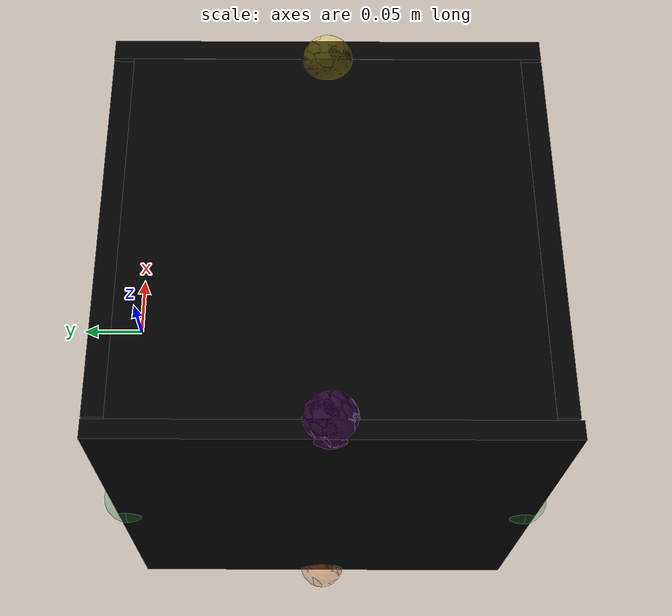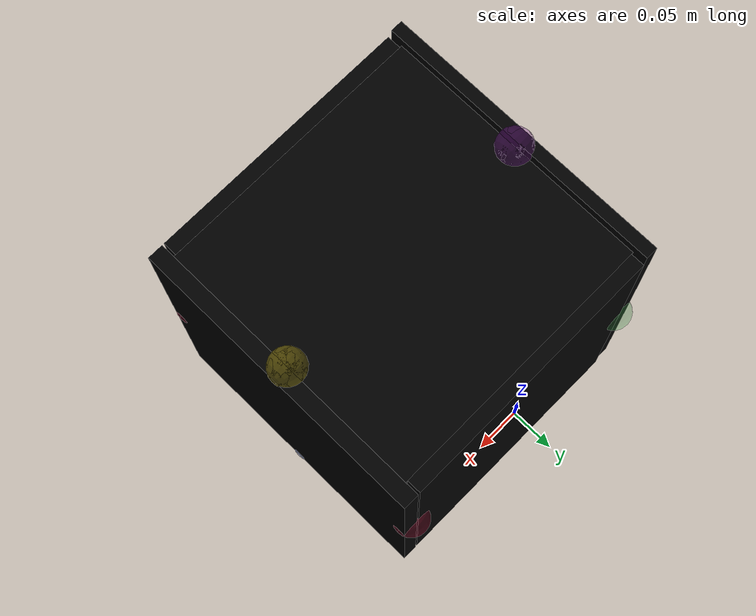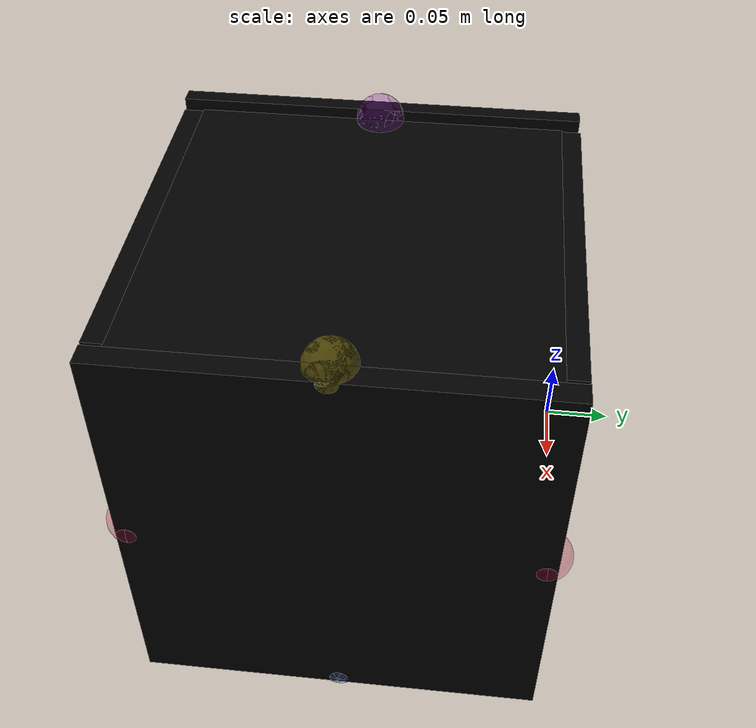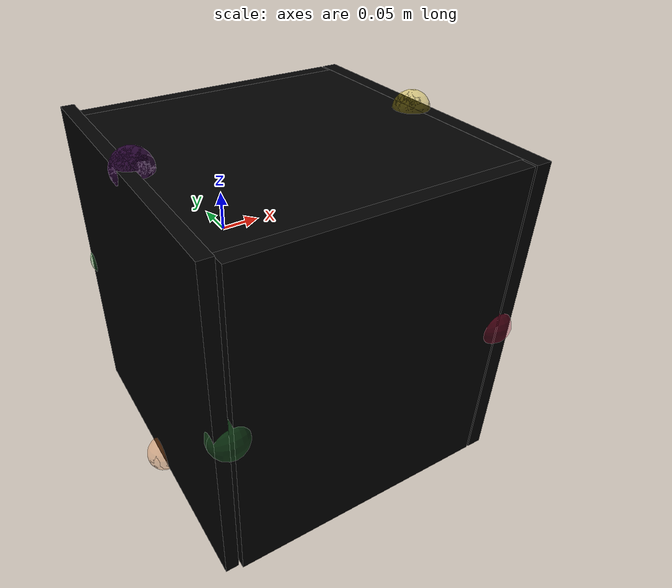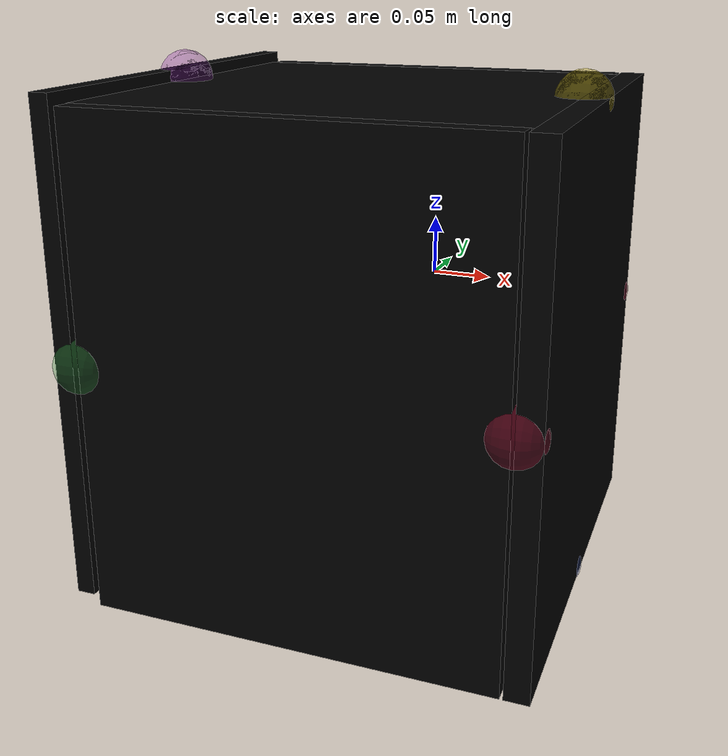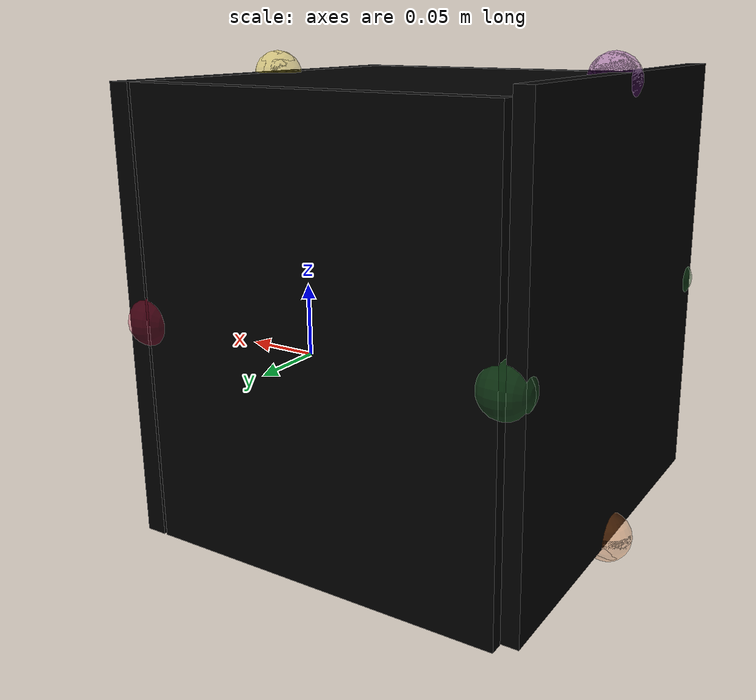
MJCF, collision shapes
<mujoco model="box_lekman_0858">
    <custom>
        <numeric data="-0.501105 0.000227 0.007907 -0.013464 -0.013464 -0.706979 -0.706979" name="0_part0_initpos"/>
        <numeric data="0.295795 -0.15687 0.009744 0.508318 -0.491542 0.508318 0.491541" name="5_part5_initpos"/>
        <numeric data="0.319709 0.240352 0.00541 0.99897 -0.0 -0.0 -0.045379" name="4_part4_initpos"/>
        <numeric data="0.703445 0.009245 0.007907 -0.013439 -0.013438 0.706979 0.706979" name="3_part3_initpos"/>
        <numeric data="-0.102143 -0.141644 0.008011 0.500279 -0.499721 -0.500279 -0.499721" name="2_part2_initpos"/>
        <numeric data="-0.107383 0.260947 0.001557 0.99989 0.0 0.0 0.01486" name="1_part1_initpos"/>
    </custom>
    <asset>
        <mesh file="box_lekman_0858/0.stl" name="part0" scale="0.001 0.001 0.001"/>
        <mesh file="box_lekman_0858/5.stl" name="part5" scale="0.001 0.001 0.001"/>
        <mesh file="box_lekman_0858/4.stl" name="part4" scale="0.001 0.001 0.001"/>
        <mesh file="box_lekman_0858/3.stl" name="part3" scale="0.001 0.001 0.001"/>
        <mesh file="box_lekman_0858/2.stl" name="part2" scale="0.001 0.001 0.001"/>
        <mesh file="box_lekman_0858/1.stl" name="part1" scale="0.001 0.001 0.001"/>
    </asset>
    <equality>
        <weld active="false" body1="2_part2" body2="1_part1" solimp="1 1 0.5" solref="0.01 0.3"/>
        <weld active="false" body1="0_part0" body2="2_part2" solimp="1 1 0.5" solref="0.01 0.3"/>
        <weld active="false" body1="3_part3" body2="2_part2" solimp="1 1 0.5" solref="0.01 0.3"/>
        <weld active="false" body1="5_part5" body2="4_part4" solimp="1 1 0.5" solref="0.01 0.3"/>
        <weld active="false" body1="0_part0" body2="5_part5" solimp="1 1 0.5" solref="0.01 0.3"/>
        <weld active="false" body1="3_part3" body2="5_part5" solimp="1 1 0.5" solref="0.01 0.3"/>
        <weld active="false" body1="5_part5" body2="1_part1" solimp="1 1 0.5" solref="0.01 0.3"/>
        <weld active="false" body1="4_part4" body2="2_part2" solimp="1 1 0.5" solref="0.01 0.3"/>
    </equality>
    <worldbody>
        <body name="0_part0" pos="0.0 1e-10 -3.1e-09" quat="1 0 0 0">
            <geom conaffinity="0" contype="0" density="0" mesh="part0" name="0_part0_mesh" pos="0.0 0.0 0.0"
                  rgba="0.82 0.71 0.55 1" type="mesh"/>
            <site name="0_part0_horizontal_radius_site" pos="0.0 1e-10 -3.1e-09" quat="1 0 0 0" rgba="0 0 0 0"
                  size="0.02"/>
            <site name="0_part0_top_site" pos="0.0 1e-10 0.180975" quat="1 0 0 0" rgba="0 0 0 0" size="0.02"/>
            <site name="0_part0_bottom_site" pos="0.0 1e-10 -0.1809750061" quat="1 0 0 0" rgba="0 0 0 0" size="0.02"/>
            <site name="0_part0_corner_site8" pos="-0.1651 0.0079375005 0.180975" quat="1 0 0 0" rgba="0 0 0 0"
                  size="0.02"/>
            <site name="0_part0_corner_site7" pos="0.1651 0.0079375005 0.180975" quat="1 0 0 0" rgba="0 0 0 0"
                  size="0.02"/>
            <site name="0_part0_corner_site6" pos="0.1651 -0.0079375003 0.180975" quat="1 0 0 0" rgba="0 0 0 0"
                  size="0.02"/>
            <site name="0_part0_corner_site5" pos="-0.1651 -0.0079375003 0.180975" quat="1 0 0 0" rgba="0 0 0 0"
                  size="0.02"/>
            <site name="0_part0_corner_site4" pos="-0.1651 0.0079375005 -0.1809750061" quat="1 0 0 0" rgba="0 0 0 0"
                  size="0.02"/>
            <site name="0_part0_corner_site3" pos="0.1651 0.0079375005 -0.1809750061" quat="1 0 0 0" rgba="0 0 0 0"
                  size="0.02"/>
            <site name="0_part0_corner_site2" pos="0.1651 -0.0079375003 -0.1809750061" quat="1 0 0 0" rgba="0 0 0 0"
                  size="0.02"/>
            <site name="0_part0_corner_site1" pos="-0.1651 -0.0079375003 -0.1809750061" quat="1 0 0 0" rgba="0 0 0 0"
                  size="0.02"/>
            <site name="sidepanel-left,0,180,conn_site1" pos="0.152 0 0.0" quat="0.7071067 0 0.7071068 0"
                  rgba="0.9019 0.0980 0.2941 0.3" size="0.02"/>
            <site name="sidepanel-right,0,180,conn_site1" pos="-0.152 0 0.00399749" quat="0.7071067 0 -0.7071068 0"
                  rgba="0.2352 0.7058 0.2941 0.3" size="0.02"/>
            <geom density="50" name="noviz_collision_0_part0_0" pos="0.0 -0.00010864 4.6920000000000005e-05"
                  quat="1 0 0 0" rgba="0 0 0 0" size="0.15 0.00782886 0.18102189999999999" solref="0.001 1" type="box"/>
        </body>
        <body name="5_part5" pos="0.1603375038 -0.1603375003 -3.1e-09" quat="1 0 0 0">
            <geom conaffinity="0" contype="0" density="0" mesh="part5" name="5_part5_mesh" pos="0.0 0.0 0.0"
                  rgba="0.82 0.71 0.55 1" type="mesh"/>
            <site name="5_part5_horizontal_radius_site" pos="-0.0 8e-10 -3.1e-09" quat="1 0 0 0" rgba="0 0 0 0"
                  size="0.02"/>
            <site name="5_part5_top_site" pos="-1e-10 8e-10 0.180975" quat="1 0 0 0" rgba="0 0 0 0" size="0.02"/>
            <site name="5_part5_bottom_site" pos="-1e-10 8e-10 -0.1809750061" quat="1 0 0 0" rgba="0 0 0 0"
                  size="0.02"/>
            <site name="5_part5_corner_site8" pos="-0.0079375039 0.1682750008 0.180975" quat="1 0 0 0" rgba="0 0 0 0"
                  size="0.02"/>
            <site name="5_part5_corner_site7" pos="0.0079375038 0.1682750008 0.180975" quat="1 0 0 0" rgba="0 0 0 0"
                  size="0.02"/>
            <site name="5_part5_corner_site6" pos="0.0079375038 -0.1682749992 0.180975" quat="1 0 0 0" rgba="0 0 0 0"
                  size="0.02"/>
            <site name="5_part5_corner_site5" pos="-0.0079375039 -0.1682749992 0.180975" quat="1 0 0 0" rgba="0 0 0 0"
                  size="0.02"/>
            <site name="5_part5_corner_site4" pos="-0.0079375039 0.1682750008 -0.1809750061" quat="1 0 0 0"
                  rgba="0 0 0 0" size="0.02"/>
            <site name="5_part5_corner_site3" pos="0.0079375038 0.1682750008 -0.1809750061" quat="1 0 0 0"
                  rgba="0 0 0 0" size="0.02"/>
            <site name="5_part5_corner_site2" pos="0.0079375038 -0.1682749992 -0.1809750061" quat="1 0 0 0"
                  rgba="0 0 0 0" size="0.02"/>
            <site name="5_part5_corner_site1" pos="-0.0079375039 -0.1682749992 -0.1809750061" quat="1 0 0 0"
                  rgba="0 0 0 0" size="0.02"/>
            <site name="left-toppanel,0,180,conn_site1" pos="-0.00833751 0 0.1793875" quat="0.7071067 0 0.7071068 0"
                  rgba="1.0 0.8823 0.0980 0.3" size="0.02"/>
            <site name="left-sidepanel,0,180,conn_site2" pos="-0.00833751 -0.16016875000000001 0.0"
                  quat="0.7071067 0 0.7071068 0" rgba="0.9019 0.0980 0.2941 0.3" size="0.02"/>
            <site name="left-sidepanel,0,180,conn_site1" pos="-0.00833751 0.16016875000000001 0.0"
                  quat="0.7071067 0 0.7071068 0" rgba="0.9019 0.0980 0.2941 0.3" size="0.02"/>
            <site name="left-botpanel,0,180,conn_site1" pos="-0.00833751 0.0 -0.1756385" quat="0.7071067 0 0.7071068 0"
                  rgba="0.2627 0.3882 0.8470 0.3" size="0.02"/>
            <geom density="50" name="noviz_collision_5_part5_0" pos="0.0009180600000000001 0.0 5.844e-05" quat="1 0 0 0"
                  rgba="0 0 0 0" size="0.00885558 0.168275 0.1810334" solref="0.001 1" type="box"/>
        </body>
        <body name="4_part4" pos="-0.0 -0.1603375003 -0.1756384737" quat="1 0 0 0">
            <geom conaffinity="0" contype="0" density="0" mesh="part4" name="4_part4_mesh" pos="0.0 0.0 0.0"
                  rgba="0.82 0.71 0.55 1" type="mesh"/>
            <site name="4_part4_horizontal_radius_site" pos="-0.0 8e-10 0.0" quat="1 0 0 0" rgba="0 0 0 0" size="0.02"/>
            <site name="4_part4_top_site" pos="0.0 8e-10 0.0053365264" quat="1 0 0 0" rgba="0 0 0 0" size="0.02"/>
            <site name="4_part4_bottom_site" pos="0.0 8e-10 -0.0053365264" quat="1 0 0 0" rgba="0 0 0 0" size="0.02"/>
            <site name="4_part4_corner_site8" pos="-0.1651 0.1524000008 0.0053365264" quat="1 0 0 0" rgba="0 0 0 0"
                  size="0.02"/>
            <site name="4_part4_corner_site7" pos="0.1651 0.1524000008 0.0053365264" quat="1 0 0 0" rgba="0 0 0 0"
                  size="0.02"/>
            <site name="4_part4_corner_site6" pos="0.1651 -0.1523999992 0.0053365264" quat="1 0 0 0" rgba="0 0 0 0"
                  size="0.02"/>
            <site name="4_part4_corner_site5" pos="-0.1651 -0.1523999992 0.0053365264" quat="1 0 0 0" rgba="0 0 0 0"
                  size="0.02"/>
            <site name="4_part4_corner_site4" pos="-0.1651 0.1524000008 -0.0053365264" quat="1 0 0 0" rgba="0 0 0 0"
                  size="0.02"/>
            <site name="4_part4_corner_site3" pos="0.1651 0.1524000008 -0.0053365264" quat="1 0 0 0" rgba="0 0 0 0"
                  size="0.02"/>
            <site name="4_part4_corner_site2" pos="0.1651 -0.1523999992 -0.0053365264" quat="1 0 0 0" rgba="0 0 0 0"
                  size="0.02"/>
            <site name="4_part4_corner_site1" pos="-0.1651 -0.1523999992 -0.0053365264" quat="1 0 0 0" rgba="0 0 0 0"
                  size="0.02"/>
            <site name="botpanel-left,0,180,conn_site1" pos="0.152 0.0 0.0" quat="0.7071067 0 0.7071068 0"
                  rgba="0.2627 0.3882 0.8470 0.3" size="0.02"/>
            <site name="botpanel-right,0,180,conn_site1" pos="-0.165 0.0 0.00399748" quat="0 0 1 0"
                  rgba="0.9607 0.5098 0.1921 0.3" size="0.02"/>
            <geom density="50" name="noviz_collision_4_part4_0" pos="0.0048 0.0 8.78e-05" quat="1 0 0 0" rgba="0 0 0 0"
                  size="0.16 0.1524 0.005424330000000001" solref="0.001 1" type="box"/>
        </body>
        <body name="3_part3" pos="0.0 -0.3206750014 -3.1e-09" quat="1 0 0 0">
            <geom conaffinity="0" contype="0" density="0" mesh="part3" name="3_part3_mesh" pos="0.0 0.0 0.0"
                  rgba="0.82 0.71 0.55 1" type="mesh"/>
            <site name="3_part3_horizontal_radius_site" pos="0.0 1e-10 -3.1e-09" quat="1 0 0 0" rgba="0 0 0 0"
                  size="0.02"/>
            <site name="3_part3_top_site" pos="0.0 1e-10 0.180975" quat="1 0 0 0" rgba="0 0 0 0" size="0.02"/>
            <site name="3_part3_bottom_site" pos="0.0 1e-10 -0.1809750061" quat="1 0 0 0" rgba="0 0 0 0" size="0.02"/>
            <site name="3_part3_corner_site8" pos="-0.1651 0.0079375012 0.180975" quat="1 0 0 0" rgba="0 0 0 0"
                  size="0.02"/>
            <site name="3_part3_corner_site7" pos="0.1651 0.0079375012 0.180975" quat="1 0 0 0" rgba="0 0 0 0"
                  size="0.02"/>
            <site name="3_part3_corner_site6" pos="0.1651 -0.007937501 0.180975" quat="1 0 0 0" rgba="0 0 0 0"
                  size="0.02"/>
            <site name="3_part3_corner_site5" pos="-0.1651 -0.007937501 0.180975" quat="1 0 0 0" rgba="0 0 0 0"
                  size="0.02"/>
            <site name="3_part3_corner_site4" pos="-0.1651 0.0079375012 -0.1809750061" quat="1 0 0 0" rgba="0 0 0 0"
                  size="0.02"/>
            <site name="3_part3_corner_site3" pos="0.1651 0.0079375012 -0.1809750061" quat="1 0 0 0" rgba="0 0 0 0"
                  size="0.02"/>
            <site name="3_part3_corner_site2" pos="0.1651 -0.007937501 -0.1809750061" quat="1 0 0 0" rgba="0 0 0 0"
                  size="0.02"/>
            <site name="3_part3_corner_sitqe1" pos="-0.1651 -0.007937501 -0.1809750061" quat="1 0 0 0" rgba="0 0 0 0"
                  size="0.02"/>
            <site name="sidepanel-right,0,180,conn_site2" pos="-0.152 0.0 0.00399749" quat="0.7071067 0 -0.7071068 0"
                  rgba="0.2352 0.7058 0.2941 0.3" size="0.02"/>
            <site name="sidepanel-left,0,180,conn_site2" pos="0.152 0.0 0.0" quat="0.7071067 0 0.7071068 0"
                  rgba="0.9019 0.0980 0.2941 0.3" size="0.02"/>
            <geom density="50" name="noviz_collision_3_part3_0" pos="0.0 0.00010864 4.6920000000000005e-05"
                  quat="1 0 0 0" rgba="0 0 0 0" size="0.15 0.00804614 0.18102189999999999" solref="0.001 1" type="box"/>
        </body>
        <body name="2_part2" pos="-0.16033749 -0.1603375003 0.007994972500000001" quat="1 0 0 0">
            <geom conaffinity="0" contype="0" density="0" mesh="part2" name="2_part2_mesh" pos="0.0 0.0 0.0"
                  rgba="0.82 0.71 0.55 1" type="mesh"/>
            <site name="2_part2_horizontal_radius_site" pos="0.0 8e-10 -3.1e-09" quat="1 0 0 0" rgba="0 0 0 0"
                  size="0.02"/>
            <site name="2_part2_top_site" pos="0.0 8e-10 0.180975" quat="1 0 0 0" rgba="0 0 0 0" size="0.02"/>
            <site name="2_part2_bottom_site" pos="0.0 8e-10 -0.1809750061" quat="1 0 0 0" rgba="0 0 0 0" size="0.02"/>
            <site name="2_part2_corner_site8" pos="-0.00793751 0.1682750008 0.180975" quat="1 0 0 0" rgba="0 0 0 0"
                  size="0.02"/>
            <site name="2_part2_corner_site7" pos="0.00793751 0.1682750008 0.180975" quat="1 0 0 0" rgba="0 0 0 0"
                  size="0.02"/>
            <site name="2_part2_corner_site6" pos="0.00793751 -0.1682749992 0.180975" quat="1 0 0 0" rgba="0 0 0 0"
                  size="0.02"/>
            <site name="2_part2_corner_site5" pos="-0.00793751 -0.1682749992 0.180975" quat="1 0 0 0" rgba="0 0 0 0"
                  size="0.02"/>
            <site name="2_part2_corner_site4" pos="-0.00793751 0.1682750008 -0.1809750061" quat="1 0 0 0" rgba="0 0 0 0"
                  size="0.02"/>
            <site name="2_part2_corner_site3" pos="0.00793751 0.1682750008 -0.1809750061" quat="1 0 0 0" rgba="0 0 0 0"
                  size="0.02"/>
            <site name="2_part2_corner_site2" pos="0.00793751 -0.1682749992 -0.1809750061" quat="1 0 0 0" rgba="0 0 0 0"
                  size="0.02"/>
            <site name="2_part2_corner_site1" pos="-0.00793751 -0.1682749992 -0.1809750061" quat="1 0 0 0"
                  rgba="0 0 0 0" size="0.02"/>
            <site name="right-toppanel,0,180,conn_site1" pos="0.008337490000000001 0.0 0.17539"
                  quat="0.7071067 0 -0.7071068 0" rgba="0.5686 0.1176 0.7058 0.3" size="0.02"/>
            <site name="right-sidepanel,0,180,conn_site2" pos="0.008337490000000001 -0.16016875000000001 -0.00399749"
                  quat="0.7071067 0 -0.7071068 0" rgba="0.2352 0.7058 0.2941 0.3" size="0.02"/>
            <site name="right-sidepanel,0,180,conn_site1" pos="0.008337490000000001 0.16016875000000001 -0.00399749"
                  quat="0.7071067 0 -0.7071068 0" rgba="0.2352 0.7058 0.2941 0.3" size="0.02"/>
            <site name="right-botpanel,0,180,conn_site1" pos="-0.00466251 0.0 -0.179636" quat="0 0 1 0"
                  rgba="0.9607 0.5098 0.1921 0.3" size="0.02"/>
            <geom density="50" name="noviz_collision_2_part2_0" pos="-0.00098636 -0.00092316 2.9950000000000003e-05"
                  quat="1 0 0 0" rgba="0 0 0 0" size="0.00695114 0.1673518 0.1810049" solref="0.001 1" type="box"/>
        </body>
        <body name="1_part1" pos="0.0 -0.1603375003 0.1793875" quat="1 0 0 0">
            <geom conaffinity="0" contype="0" density="0" mesh="part1" name="1_part1_mesh" pos="0.0 0.0 0.0"
                  rgba="0.82 0.71 0.55 1" type="mesh"/>
            <site name="1_part1_horizontal_radius_site" pos="0.0 0.0 0.0" quat="1 0 0 0" rgba="0 0 0 0" size="0.02"/>
            <site name="1_part1_top_site" pos="0.0 0.0 0.0015875" quat="1 0 0 0" rgba="0 0 0 0" size="0.02"/>
            <site name="1_part1_bottom_site" pos="0.0 0.0 -0.0015875" quat="1 0 0 0" rgba="0 0 0 0" size="0.02"/>
            <site name="1_part1_corner_site8" pos="-0.1524 0.1524 0.0015875" quat="1 0 0 0" rgba="0 0 0 0" size="0.02"/>
            <site name="1_part1_corner_site7" pos="0.1524 0.1524 0.0015875" quat="1 0 0 0" rgba="0 0 0 0" size="0.02"/>
            <site name="1_part1_corner_site6" pos="0.1524 -0.1524 0.0015875" quat="1 0 0 0" rgba="0 0 0 0" size="0.02"/>
            <site name="1_part1_corner_site5" pos="-0.1524 -0.1524 0.0015875" quat="1 0 0 0" rgba="0 0 0 0"
                  size="0.02"/>
            <site name="1_part1_corner_site4" pos="-0.1524 0.1524 -0.0015875" quat="1 0 0 0" rgba="0 0 0 0"
                  size="0.02"/>
            <site name="1_part1_corner_site3" pos="0.1524 0.1524 -0.0015875" quat="1 0 0 0" rgba="0 0 0 0" size="0.02"/>
            <site name="1_part1_corner_site2" pos="0.1524 -0.1524 -0.0015875" quat="1 0 0 0" rgba="0 0 0 0"
                  size="0.02"/>
            <site name="1_part1_corner_site1" pos="-0.1524 -0.1524 -0.0015875" quat="1 0 0 0" rgba="0 0 0 0"
                  size="0.02"/>
            <site name="toppanel-left,0,180,conn_site1" pos="0.152 0.0 0.0" quat="0.7071067 0 0.7071068 0"
                  rgba="1.0 0.8823 0.0980 0.3" size="0.02"/>
            <site name="toppanel-right,0,180,conn_site1" pos="-0.152 0.0 0.00399748" quat="0.7071067 0 -0.7071068 0"
                  rgba="0.5686 0.1176 0.7058 0.3" size="0.02"/>
            <geom density="50" name="noviz_collision_1_part1_0" pos="0.0 0.0 0.0" quat="1 0 0 0" rgba="0 0 0 0"
                  size="0.1524 0.1524 0.00158749" solref="0.001 1" type="box"/>
        </body>
    </worldbody>
    <actuator/>
    <sensor/>
    <contact/>
    <default/>
</mujoco>
